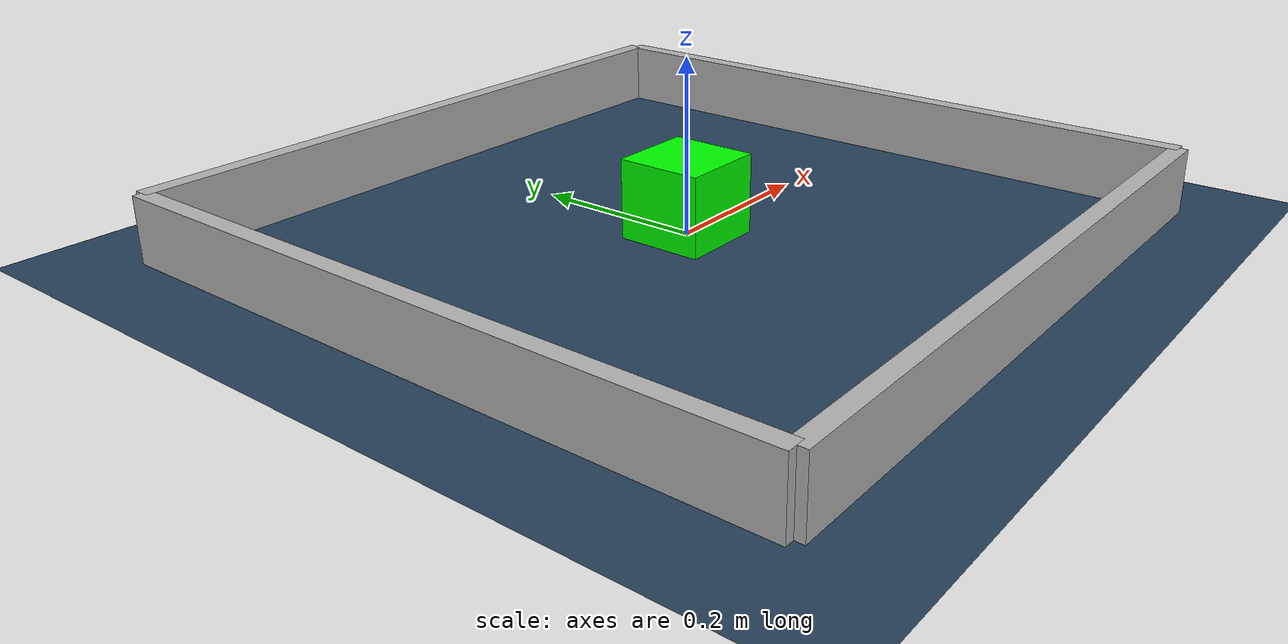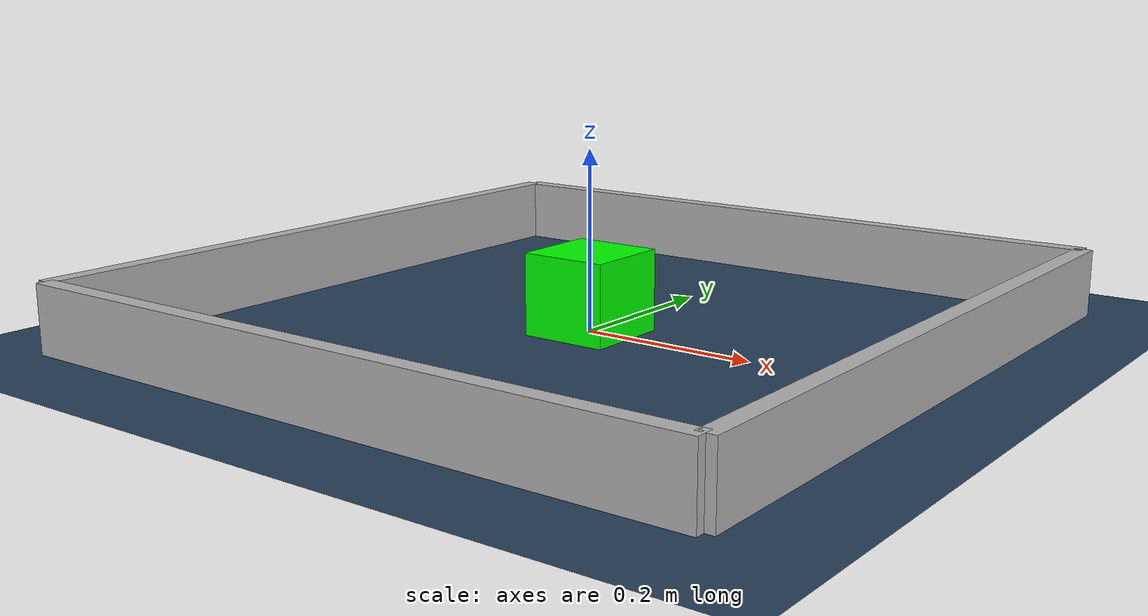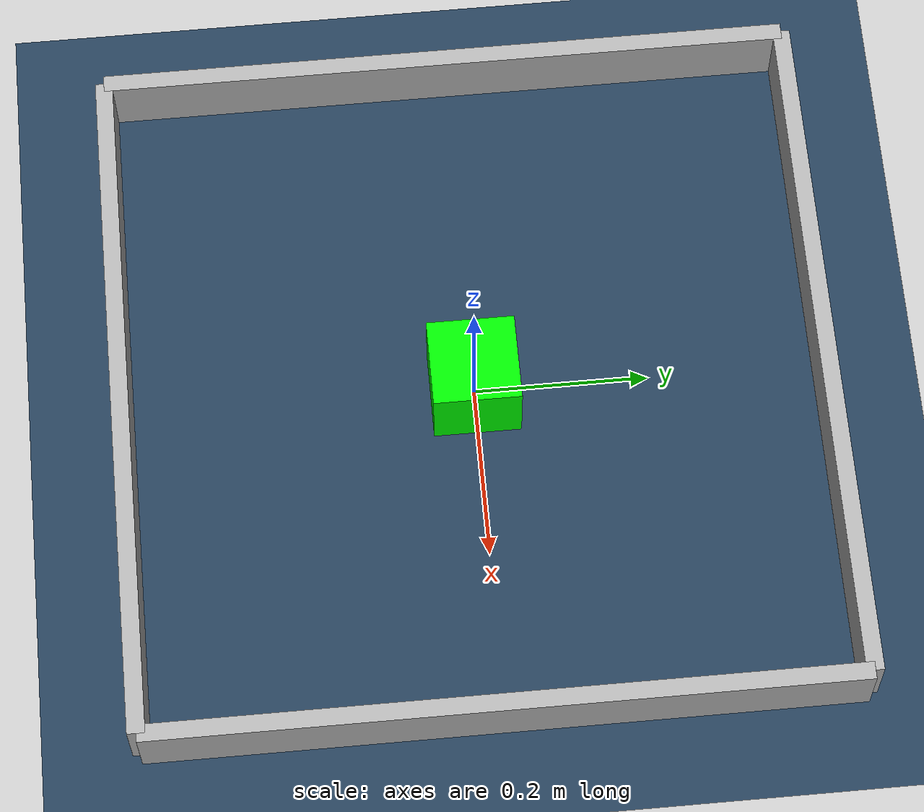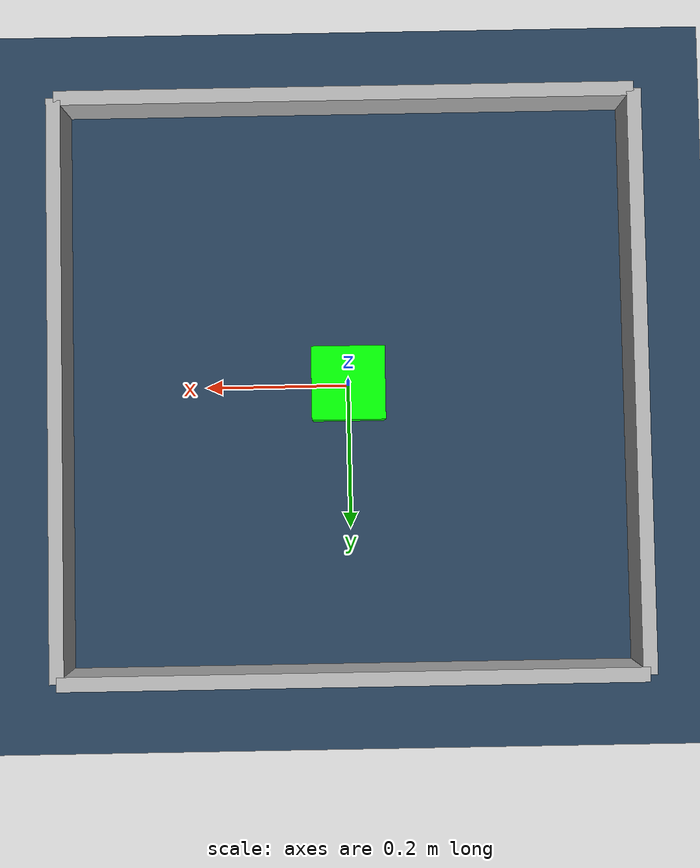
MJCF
<?xml version="1.0" ?>
<mujoco model="green_cube_verify">
    <compiler angle="degree" coordinate="local"/>
    <option timestep="0.001" gravity="0 0 0"/>

    <!-- Worldbody -->
    <worldbody>
        <!-- Ground plane -->
        <geom name="floor" size="0 0 0.05" type="plane" material="groundplane"/>

        <!-- Walls to enclose the space -->
        <!-- Wall at x = -0.4 -->
        <body name="wall_x_neg" pos="-0.4 0 0.025">
            <geom name="wall_x_neg_geom" type="box" size="0.01 0.4 0.05" rgba="0.7 0.7 0.7 1" contype="1" conaffinity="1"/>
            <inertial pos="0 0 0" mass="100.0" diaginertia="10 10 10"/>
        </body>

        <!-- Wall at x = 0.4 -->
        <body name="wall_x_pos" pos="0.4 0 0.025">
            <geom name="wall_x_pos_geom" type="box" size="0.01 0.4 0.05" rgba="0.7 0.7 0.7 1" contype="1" conaffinity="1"/>
            <inertial pos="0 0 0" mass="100.0" diaginertia="10 10 10"/>
        </body>

        <!-- Wall at y = -0.4 -->
        <body name="wall_y_neg" pos="0 -0.4 0.025">
            <geom name="wall_y_neg_geom" type="box" size="0.4 0.01 0.05" rgba="0.7 0.7 0.7 1" contype="1" conaffinity="1"/>
            <inertial pos="0 0 0" mass="100.0" diaginertia="10 10 10"/>
        </body>

        <!-- Wall at y = 0.4 -->
        <body name="wall_y_pos" pos="0 0.4 0.025">
            <geom name="wall_y_pos_geom" type="box" size="0.4 0.01 0.05" rgba="0.7 0.7 0.7 1" contype="1" conaffinity="1"/>
            <inertial pos="0 0 0" mass="100.0" diaginertia="10 10 10"/>
        </body>

        <!-- Green cube -->
        <body name="cube" pos="0 0 0.04">
            <geom name="green_cube" type="box" size="0.05 0.05 0.05" rgba="0 1 0 1" contype="1" conaffinity="1"/>
            <joint name="cube_free_joint" type="free" />
            <inertial pos="0 0 0" mass="100.0" diaginertia="10 10 10"/>
        </body>

        <!-- Floating spotlight -->
        <body name="spotlight_body" pos="0.35 0.35 0.5">
            <joint name="spotlight_free_joint" type="free" />
            <light name="spotlight" pos="0 0 0" dir="0 0 -1" diffuse="1 1 1" specular="0.5 0.5 0.5" cutoff="45" exponent="10" directional="false"/>
            <camera name="spotlight_camera" pos="0 0 0.1" mode="trackcom"/>
            <inertial pos="0 0 0" mass="0.01" diaginertia="0.001 0.001 0.001"/>
        </body>

        <!-- Camera -->
        <camera name="fixed" pos="0 0 3" zaxis="0 0 1"/>
    </worldbody>

    <!-- Assets -->
    <asset>
        <texture type="skybox" builtin="gradient" rgb1="0.3 0.5 0.7" rgb2="0 0 0" width="512" height="3072"/>
        <texture type="2d" name="groundplane" builtin="checker" mark="edge" rgb1="0.2 0.3 0.4" rgb2="0.1 0.2 0.3"
        markrgb="0.8 0.8 0.8" width="300" height="300"/>
        <material name="groundplane" texture="groundplane" texuniform="true" texrepeat="5 5" reflectance="0.2"/>
    </asset>

    <!-- Visual -->
    <visual>
        <map znear="0.1" zfar="50"/>
    </visual>
</mujoco>
